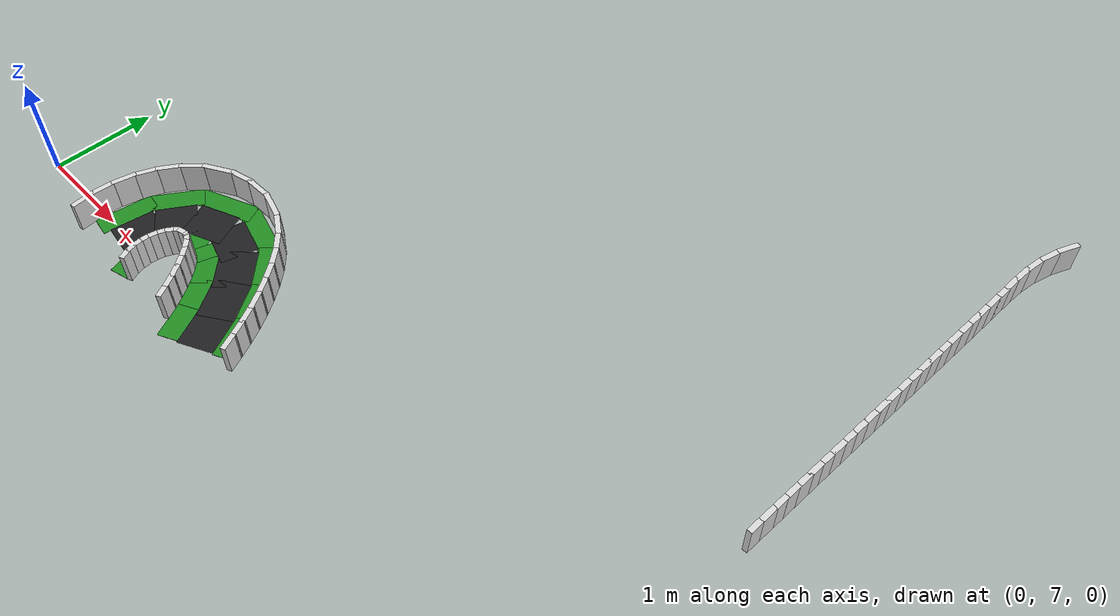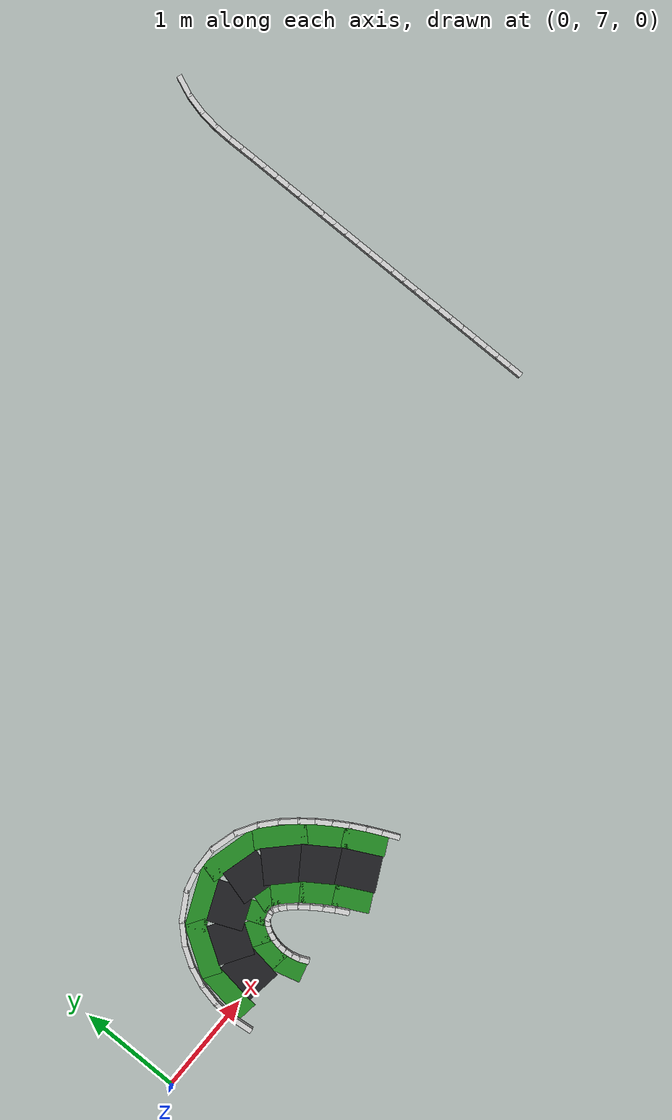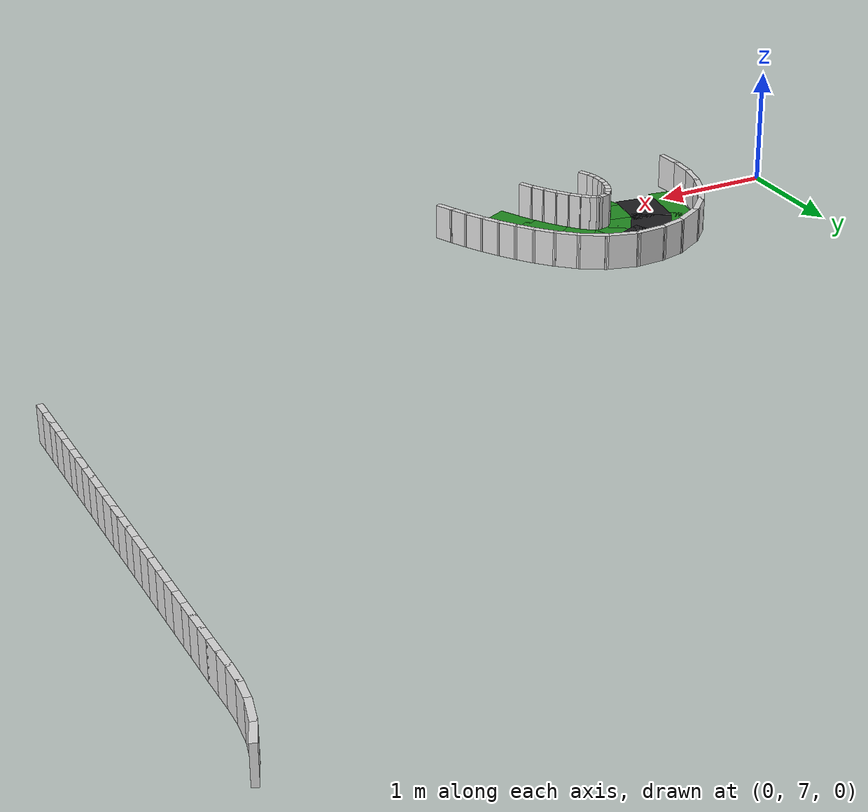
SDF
<sdf version="1.8">
 <world name="it_arena_track">
  <model name="it_arena_track_static">
   <static>true</static>
   <link name="surface_main_73">
    <pose>2.6581 6.9136 0.0015 0 0 2.03842</pose>
    <collision name="surface_main_73_col">
     <geometry><box><size>0.3908 0.3500 0.0030</size></box></geometry>
    </collision>
    <visual name="surface_main_73_vis">
     <geometry><box><size>0.3908 0.3500 0.0030</size></box></geometry>
     <material><ambient>0.12 0.12 0.13 1</ambient><diffuse>0.12 0.12 0.13 1</diffuse></material>
    </visual>
   </link>
   <link name="surface_main_74">
    <pose>2.4810 7.2144 0.0015 0 0 2.16415</pose>
    <collision name="surface_main_74_col">
     <geometry><box><size>0.4137 0.3500 0.0030</size></box></geometry>
    </collision>
    <visual name="surface_main_74_vis">
     <geometry><box><size>0.4137 0.3500 0.0030</size></box></geometry>
     <material><ambient>0.12 0.12 0.13 1</ambient><diffuse>0.12 0.12 0.13 1</diffuse></material>
    </visual>
   </link>
   <link name="surface_main_75">
    <pose>2.2529 7.4895 0.0015 0 0 2.36232</pose>
    <collision name="surface_main_75_col">
     <geometry><box><size>0.4123 0.3500 0.0030</size></box></geometry>
    </collision>
    <visual name="surface_main_75_vis">
     <geometry><box><size>0.4123 0.3500 0.0030</size></box></geometry>
     <material><ambient>0.12 0.12 0.13 1</ambient><diffuse>0.12 0.12 0.13 1</diffuse></material>
    </visual>
   </link>
   <link name="surface_main_76">
    <pose>1.9651 7.6596 0.0015 0 0 2.87294</pose>
    <collision name="surface_main_76_col">
     <geometry><box><size>0.3823 0.3500 0.0030</size></box></geometry>
    </collision>
    <visual name="surface_main_76_vis">
     <geometry><box><size>0.3823 0.3500 0.0030</size></box></geometry>
     <material><ambient>0.12 0.12 0.13 1</ambient><diffuse>0.12 0.12 0.13 1</diffuse></material>
    </visual>
   </link>
   <link name="surface_main_77">
    <pose>1.6422 7.6354 0.0015 0 0 -2.74364</pose>
    <collision name="surface_main_77_col">
     <geometry><box><size>0.4056 0.3500 0.0030</size></box></geometry>
    </collision>
    <visual name="surface_main_77_vis">
     <geometry><box><size>0.4056 0.3500 0.0030</size></box></geometry>
     <material><ambient>0.12 0.12 0.13 1</ambient><diffuse>0.12 0.12 0.13 1</diffuse></material>
    </visual>
   </link>
   <link name="surface_main_78">
    <pose>1.3888 7.4252 0.0015 0 0 -2.14076</pose>
    <collision name="surface_main_78_col">
     <geometry><box><size>0.3875 0.3500 0.0030</size></box></geometry>
    </collision>
    <visual name="surface_main_78_vis">
     <geometry><box><size>0.3875 0.3500 0.0030</size></box></geometry>
     <material><ambient>0.12 0.12 0.13 1</ambient><diffuse>0.12 0.12 0.13 1</diffuse></material>
    </visual>
   </link>
   <link name="surface_main_79">
    <pose>1.2733 7.1063 0.0015 0 0 -1.70835</pose>
    <collision name="surface_main_79_col">
     <geometry><box><size>0.4110 0.3500 0.0030</size></box></geometry>
    </collision>
    <visual name="surface_main_79_vis">
     <geometry><box><size>0.4110 0.3500 0.0030</size></box></geometry>
     <material><ambient>0.12 0.12 0.13 1</ambient><diffuse>0.12 0.12 0.13 1</diffuse></material>
    </visual>
   </link>
   <link name="grass_main_left_73">
    <pose>2.4139 6.7879 0.0010 0 0 2.03775</pose>
    <collision name="grass_main_left_73_col">
     <geometry><box><size>0.3600 0.2000 0.0020</size></box></geometry>
    </collision>
    <visual name="grass_main_left_73_vis">
     <geometry><box><size>0.3600 0.2000 0.0020</size></box></geometry>
     <material><ambient>0.13 0.55 0.13 1</ambient><diffuse>0.13 0.55 0.13 1</diffuse></material>
    </visual>
   </link>
   <link name="grass_main_left_74">
    <pose>2.2538 7.0607 0.0010 0 0 2.16400</pose>
    <collision name="grass_main_left_74_col">
     <geometry><box><size>0.3691 0.2000 0.0020</size></box></geometry>
    </collision>
    <visual name="grass_main_left_74_vis">
     <geometry><box><size>0.3691 0.2000 0.0020</size></box></geometry>
     <material><ambient>0.13 0.55 0.13 1</ambient><diffuse>0.13 0.55 0.13 1</diffuse></material>
    </visual>
   </link>
   <link name="grass_main_left_75">
    <pose>2.0676 7.2908 0.0010 0 0 2.35339</pose>
    <collision name="grass_main_left_75_col">
     <geometry><box><size>0.3147 0.2000 0.0020</size></box></geometry>
    </collision>
    <visual name="grass_main_left_75_vis">
     <geometry><box><size>0.3147 0.2000 0.0020</size></box></geometry>
     <material><ambient>0.13 0.55 0.13 1</ambient><diffuse>0.13 0.55 0.13 1</diffuse></material>
    </visual>
   </link>
   <link name="grass_main_left_76">
    <pose>1.9012 7.4089 0.0010 0 0 2.84828</pose>
    <collision name="grass_main_left_76_col">
     <geometry><box><size>0.1679 0.2000 0.0020</size></box></geometry>
    </collision>
    <visual name="grass_main_left_76_vis">
     <geometry><box><size>0.1679 0.2000 0.0020</size></box></geometry>
     <material><ambient>0.13 0.55 0.13 1</ambient><diffuse>0.13 0.55 0.13 1</diffuse></material>
    </visual>
   </link>
   <link name="grass_main_left_77">
    <pose>1.7507 7.3993 0.0010 0 0 -2.77752</pose>
    <collision name="grass_main_left_77_col">
     <geometry><box><size>0.1986 0.2000 0.0020</size></box></geometry>
    </collision>
    <visual name="grass_main_left_77_vis">
     <geometry><box><size>0.1986 0.2000 0.0020</size></box></geometry>
     <material><ambient>0.13 0.55 0.13 1</ambient><diffuse>0.13 0.55 0.13 1</diffuse></material>
    </visual>
   </link>
   <link name="grass_main_left_78">
    <pose>1.6131 7.2788 0.0010 0 0 -2.13592</pose>
    <collision name="grass_main_left_78_col">
     <geometry><box><size>0.2444 0.2000 0.0020</size></box></geometry>
    </collision>
    <visual name="grass_main_left_78_vis">
     <geometry><box><size>0.2444 0.2000 0.0020</size></box></geometry>
     <material><ambient>0.13 0.55 0.13 1</ambient><diffuse>0.13 0.55 0.13 1</diffuse></material>
    </visual>
   </link>
   <link name="grass_main_left_79">
    <pose>1.5397 7.0690 0.0010 0 0 -1.70750</pose>
    <collision name="grass_main_left_79_col">
     <geometry><box><size>0.2788 0.2000 0.0020</size></box></geometry>
    </collision>
    <visual name="grass_main_left_79_vis">
     <geometry><box><size>0.2788 0.2000 0.0020</size></box></geometry>
     <material><ambient>0.13 0.55 0.13 1</ambient><diffuse>0.13 0.55 0.13 1</diffuse></material>
    </visual>
   </link>
   <link name="grass_main_left_80">
    <pose>1.5537 6.8344 0.0010 0 0 -1.31031</pose>
    <collision name="grass_main_left_80_col">
     <geometry><box><size>0.2725 0.2000 0.0020</size></box></geometry>
    </collision>
    <visual name="grass_main_left_80_vis">
     <geometry><box><size>0.2725 0.2000 0.0020</size></box></geometry>
     <material><ambient>0.13 0.55 0.13 1</ambient><diffuse>0.13 0.55 0.13 1</diffuse></material>
    </visual>
   </link>
   <link name="grass_main_right_67">
    <pose>2.9023 7.0394 0.0010 0 0 2.03899</pose>
    <collision name="grass_main_right_67_col">
     <geometry><box><size>0.4216 0.2000 0.0020</size></box></geometry>
    </collision>
    <visual name="grass_main_right_67_vis">
     <geometry><box><size>0.4216 0.2000 0.0020</size></box></geometry>
     <material><ambient>0.13 0.55 0.13 1</ambient><diffuse>0.13 0.55 0.13 1</diffuse></material>
    </visual>
   </link>
   <link name="grass_main_right_68">
    <pose>2.7082 7.3681 0.0010 0 0 2.16428</pose>
    <collision name="grass_main_right_68_col">
     <geometry><box><size>0.4582 0.2000 0.0020</size></box></geometry>
    </collision>
    <visual name="grass_main_right_68_vis">
     <geometry><box><size>0.4582 0.2000 0.0020</size></box></geometry>
     <material><ambient>0.13 0.55 0.13 1</ambient><diffuse>0.13 0.55 0.13 1</diffuse></material>
    </visual>
   </link>
   <link name="grass_main_right_69">
    <pose>2.4382 7.6882 0.0010 0 0 2.36783</pose>
    <collision name="grass_main_right_69_col">
     <geometry><box><size>0.5100 0.2000 0.0020</size></box></geometry>
    </collision>
    <visual name="grass_main_right_69_vis">
     <geometry><box><size>0.5100 0.2000 0.0020</size></box></geometry>
     <material><ambient>0.13 0.55 0.13 1</ambient><diffuse>0.13 0.55 0.13 1</diffuse></material>
    </visual>
   </link>
   <link name="grass_main_right_70">
    <pose>2.0289 7.9103 0.0010 0 0 2.87988</pose>
    <collision name="grass_main_right_70_col">
     <geometry><box><size>0.5968 0.2000 0.0020</size></box></geometry>
    </collision>
    <visual name="grass_main_right_70_vis">
     <geometry><box><size>0.5968 0.2000 0.0020</size></box></geometry>
     <material><ambient>0.13 0.55 0.13 1</ambient><diffuse>0.13 0.55 0.13 1</diffuse></material>
    </visual>
   </link>
   <link name="grass_main_right_71">
    <pose>1.5338 7.8715 0.0010 0 0 -2.73266</pose>
    <collision name="grass_main_right_71_col">
     <geometry><box><size>0.6127 0.2000 0.0020</size></box></geometry>
    </collision>
    <visual name="grass_main_right_71_vis">
     <geometry><box><size>0.6127 0.2000 0.0020</size></box></geometry>
     <material><ambient>0.13 0.55 0.13 1</ambient><diffuse>0.13 0.55 0.13 1</diffuse></material>
    </visual>
   </link>
   <link name="grass_main_right_72">
    <pose>1.1644 7.5716 0.0010 0 0 -2.14299</pose>
    <collision name="grass_main_right_72_col">
     <geometry><box><size>0.5307 0.2000 0.0020</size></box></geometry>
    </collision>
    <visual name="grass_main_right_72_vis">
     <geometry><box><size>0.5307 0.2000 0.0020</size></box></geometry>
     <material><ambient>0.13 0.55 0.13 1</ambient><diffuse>0.13 0.55 0.13 1</diffuse></material>
    </visual>
   </link>
   <link name="grass_main_right_73">
    <pose>1.0070 7.1437 0.0010 0 0 -1.70879</pose>
    <collision name="grass_main_right_73_col">
     <geometry><box><size>0.5431 0.2000 0.0020</size></box></geometry>
    </collision>
    <visual name="grass_main_right_73_vis">
     <geometry><box><size>0.5431 0.2000 0.0020</size></box></geometry>
     <material><ambient>0.13 0.55 0.13 1</ambient><diffuse>0.13 0.55 0.13 1</diffuse></material>
    </visual>
   </link>
   <link name="walls_main_left_184">
    <pose>2.2717 6.7977 0.1500 0 0 2.06099</pose>
    <collision name="walls_main_left_184_col">
     <geometry><box><size>0.1367 0.0500 0.3000</size></box></geometry>
     <surface><friction><ode><mu>0.8</mu><mu2>0.8</mu2></ode></friction></surface>
    </collision>
    <visual name="walls_main_left_184_vis">
     <geometry><box><size>0.1367 0.0500 0.3000</size></box></geometry>
     <material><ambient>0.85 0.85 0.85 1</ambient><diffuse>0.85 0.85 0.85 1</diffuse></material>
    </visual>
   </link>
   <link name="walls_main_left_185">
    <pose>2.2133 6.9002 0.1500 0 0 2.11734</pose>
    <collision name="walls_main_left_185_col">
     <geometry><box><size>0.1348 0.0500 0.3000</size></box></geometry>
     <surface><friction><ode><mu>0.8</mu><mu2>0.8</mu2></ode></friction></surface>
    </collision>
    <visual name="walls_main_left_185_vis">
     <geometry><box><size>0.1348 0.0500 0.3000</size></box></geometry>
     <material><ambient>0.85 0.85 0.85 1</ambient><diffuse>0.85 0.85 0.85 1</diffuse></material>
    </visual>
   </link>
   <link name="walls_main_left_186">
    <pose>2.1489 7.0003 0.1500 0 0 2.16656</pose>
    <collision name="walls_main_left_186_col">
     <geometry><box><size>0.1391 0.0500 0.3000</size></box></geometry>
     <surface><friction><ode><mu>0.8</mu><mu2>0.8</mu2></ode></friction></surface>
    </collision>
    <visual name="walls_main_left_186_vis">
     <geometry><box><size>0.1391 0.0500 0.3000</size></box></geometry>
     <material><ambient>0.85 0.85 0.85 1</ambient><diffuse>0.85 0.85 0.85 1</diffuse></material>
    </visual>
   </link>
   <link name="walls_main_left_187">
    <pose>2.0801 7.0962 0.1500 0 0 2.22118</pose>
    <collision name="walls_main_left_187_col">
     <geometry><box><size>0.1324 0.0500 0.3000</size></box></geometry>
     <surface><friction><ode><mu>0.8</mu><mu2>0.8</mu2></ode></friction></surface>
    </collision>
    <visual name="walls_main_left_187_vis">
     <geometry><box><size>0.1324 0.0500 0.3000</size></box></geometry>
     <material><ambient>0.85 0.85 0.85 1</ambient><diffuse>0.85 0.85 0.85 1</diffuse></material>
    </visual>
   </link>
   <link name="walls_main_left_188">
    <pose>2.0113 7.1802 0.1500 0 0 2.29770</pose>
    <collision name="walls_main_left_188_col">
     <geometry><box><size>0.1173 0.0500 0.3000</size></box></geometry>
     <surface><friction><ode><mu>0.8</mu><mu2>0.8</mu2></ode></friction></surface>
    </collision>
    <visual name="walls_main_left_188_vis">
     <geometry><box><size>0.1173 0.0500 0.3000</size></box></geometry>
     <material><ambient>0.85 0.85 0.85 1</ambient><diffuse>0.85 0.85 0.85 1</diffuse></material>
    </visual>
   </link>
   <link name="walls_main_left_189">
    <pose>1.9474 7.2453 0.1500 0 0 2.41002</pose>
    <collision name="walls_main_left_189_col">
     <geometry><box><size>0.0929 0.0500 0.3000</size></box></geometry>
     <surface><friction><ode><mu>0.8</mu><mu2>0.8</mu2></ode></friction></surface>
    </collision>
    <visual name="walls_main_left_189_vis">
     <geometry><box><size>0.0929 0.0500 0.3000</size></box></geometry>
     <material><ambient>0.85 0.85 0.85 1</ambient><diffuse>0.85 0.85 0.85 1</diffuse></material>
    </visual>
   </link>
   <link name="walls_main_left_190">
    <pose>1.8954 7.2865 0.1500 0 0 2.56725</pose>
    <collision name="walls_main_left_190_col">
     <geometry><box><size>0.0600 0.0500 0.3000</size></box></geometry>
     <surface><friction><ode><mu>0.8</mu><mu2>0.8</mu2></ode></friction></surface>
    </collision>
    <visual name="walls_main_left_190_vis">
     <geometry><box><size>0.0600 0.0500 0.3000</size></box></geometry>
     <material><ambient>0.85 0.85 0.85 1</ambient><diffuse>0.85 0.85 0.85 1</diffuse></material>
    </visual>
   </link>
   <link name="walls_main_left_191">
    <pose>1.8661 7.3034 0.1500 0 0 2.78462</pose>
    <collision name="walls_main_left_191_col">
     <geometry><box><size>0.0180 0.0500 0.3000</size></box></geometry>
     <surface><friction><ode><mu>0.8</mu><mu2>0.8</mu2></ode></friction></surface>
    </collision>
    <visual name="walls_main_left_191_vis">
     <geometry><box><size>0.0180 0.0500 0.3000</size></box></geometry>
     <material><ambient>0.85 0.85 0.85 1</ambient><diffuse>0.85 0.85 0.85 1</diffuse></material>
    </visual>
   </link>
   <link name="walls_main_left_192">
    <pose>1.8442 7.3046 0.1500 0 0 -3.04125</pose>
    <collision name="walls_main_left_192_col">
     <geometry><box><size>0.0339 0.0500 0.3000</size></box></geometry>
     <surface><friction><ode><mu>0.8</mu><mu2>0.8</mu2></ode></friction></surface>
    </collision>
    <visual name="walls_main_left_192_vis">
     <geometry><box><size>0.0339 0.0500 0.3000</size></box></geometry>
     <material><ambient>0.85 0.85 0.85 1</ambient><diffuse>0.85 0.85 0.85 1</diffuse></material>
    </visual>
   </link>
   <link name="walls_main_left_193">
    <pose>1.7961 7.2950 0.1500 0 0 -2.90179</pose>
    <collision name="walls_main_left_193_col">
     <geometry><box><size>0.0792 0.0500 0.3000</size></box></geometry>
     <surface><friction><ode><mu>0.8</mu><mu2>0.8</mu2></ode></friction></surface>
    </collision>
    <visual name="walls_main_left_193_vis">
     <geometry><box><size>0.0792 0.0500 0.3000</size></box></geometry>
     <material><ambient>0.85 0.85 0.85 1</ambient><diffuse>0.85 0.85 0.85 1</diffuse></material>
    </visual>
   </link>
   <link name="walls_main_left_194">
    <pose>1.7648 7.2870 0.1500 0 0 0.10204</pose>
    <collision name="walls_main_left_194_col">
     <geometry><box><size>0.0052 0.0500 0.3000</size></box></geometry>
     <surface><friction><ode><mu>0.8</mu><mu2>0.8</mu2></ode></friction></surface>
    </collision>
    <visual name="walls_main_left_194_vis">
     <geometry><box><size>0.0052 0.0500 0.3000</size></box></geometry>
     <material><ambient>0.85 0.85 0.85 1</ambient><diffuse>0.85 0.85 0.85 1</diffuse></material>
    </visual>
   </link>
   <link name="walls_main_left_195">
    <pose>1.7480 7.2676 0.1500 0 0 -2.34065</pose>
    <collision name="walls_main_left_195_col">
     <geometry><box><size>0.0630 0.0500 0.3000</size></box></geometry>
     <surface><friction><ode><mu>0.8</mu><mu2>0.8</mu2></ode></friction></surface>
    </collision>
    <visual name="walls_main_left_195_vis">
     <geometry><box><size>0.0630 0.0500 0.3000</size></box></geometry>
     <material><ambient>0.85 0.85 0.85 1</ambient><diffuse>0.85 0.85 0.85 1</diffuse></material>
    </visual>
   </link>
   <link name="walls_main_left_196">
    <pose>1.7114 7.2203 0.1500 0 0 -2.13696</pose>
    <collision name="walls_main_left_196_col">
     <geometry><box><size>0.0753 0.0500 0.3000</size></box></geometry>
     <surface><friction><ode><mu>0.8</mu><mu2>0.8</mu2></ode></friction></surface>
    </collision>
    <visual name="walls_main_left_196_vis">
     <geometry><box><size>0.0753 0.0500 0.3000</size></box></geometry>
     <material><ambient>0.85 0.85 0.85 1</ambient><diffuse>0.85 0.85 0.85 1</diffuse></material>
    </visual>
   </link>
   <link name="walls_main_left_197">
    <pose>1.6803 7.1589 0.1500 0 0 -1.95216</pose>
    <collision name="walls_main_left_197_col">
     <geometry><box><size>0.0836 0.0500 0.3000</size></box></geometry>
     <surface><friction><ode><mu>0.8</mu><mu2>0.8</mu2></ode></friction></surface>
    </collision>
    <visual name="walls_main_left_197_vis">
     <geometry><box><size>0.0836 0.0500 0.3000</size></box></geometry>
     <material><ambient>0.85 0.85 0.85 1</ambient><diffuse>0.85 0.85 0.85 1</diffuse></material>
    </visual>
   </link>
   <link name="walls_main_left_198">
    <pose>1.6589 7.0886 0.1500 0 0 -1.78414</pose>
    <collision name="walls_main_left_198_col">
     <geometry><box><size>0.0860 0.0500 0.3000</size></box></geometry>
     <surface><friction><ode><mu>0.8</mu><mu2>0.8</mu2></ode></friction></surface>
    </collision>
    <visual name="walls_main_left_198_vis">
     <geometry><box><size>0.0860 0.0500 0.3000</size></box></geometry>
     <material><ambient>0.85 0.85 0.85 1</ambient><diffuse>0.85 0.85 0.85 1</diffuse></material>
    </visual>
   </link>
   <link name="walls_main_left_199">
    <pose>1.6490 7.0162 0.1500 0 0 -1.62569</pose>
    <collision name="walls_main_left_199_col">
     <geometry><box><size>0.0827 0.0500 0.3000</size></box></geometry>
     <surface><friction><ode><mu>0.8</mu><mu2>0.8</mu2></ode></friction></surface>
    </collision>
    <visual name="walls_main_left_199_vis">
     <geometry><box><size>0.0827 0.0500 0.3000</size></box></geometry>
     <material><ambient>0.85 0.85 0.85 1</ambient><diffuse>0.85 0.85 0.85 1</diffuse></material>
    </visual>
   </link>
   <link name="walls_main_left_200">
    <pose>1.6508 6.9414 0.1500 0 0 -1.47225</pose>
    <collision name="walls_main_left_200_col">
     <geometry><box><size>0.0899 0.0500 0.3000</size></box></geometry>
     <surface><friction><ode><mu>0.8</mu><mu2>0.8</mu2></ode></friction></surface>
    </collision>
    <visual name="walls_main_left_200_vis">
     <geometry><box><size>0.0899 0.0500 0.3000</size></box></geometry>
     <material><ambient>0.85 0.85 0.85 1</ambient><diffuse>0.85 0.85 0.85 1</diffuse></material>
    </visual>
   </link>
   <link name="walls_main_left_201">
    <pose>1.6643 6.8653 0.1500 0 0 -1.31839</pose>
    <collision name="walls_main_left_201_col">
     <geometry><box><size>0.0884 0.0500 0.3000</size></box></geometry>
     <surface><friction><ode><mu>0.8</mu><mu2>0.8</mu2></ode></friction></surface>
    </collision>
    <visual name="walls_main_left_201_vis">
     <geometry><box><size>0.0884 0.0500 0.3000</size></box></geometry>
     <material><ambient>0.85 0.85 0.85 1</ambient><diffuse>0.85 0.85 0.85 1</diffuse></material>
    </visual>
   </link>
   <link name="walls_main_left_202">
    <pose>1.6923 6.7869 0.1500 0 0 -1.14992</pose>
    <collision name="walls_main_left_202_col">
     <geometry><box><size>0.1037 0.0500 0.3000</size></box></geometry>
     <surface><friction><ode><mu>0.8</mu><mu2>0.8</mu2></ode></friction></surface>
    </collision>
    <visual name="walls_main_left_202_vis">
     <geometry><box><size>0.1037 0.0500 0.3000</size></box></geometry>
     <material><ambient>0.85 0.85 0.85 1</ambient><diffuse>0.85 0.85 0.85 1</diffuse></material>
    </visual>
   </link>
   <link name="walls_main_right_64">
    <pose>7.2956 12.8287 0.1500 0 0 -1.96199</pose>
    <collision name="walls_main_right_64_col">
     <geometry><box><size>0.2227 0.0500 0.3000</size></box></geometry>
     <surface><friction><ode><mu>0.8</mu><mu2>0.8</mu2></ode></friction></surface>
    </collision>
    <visual name="walls_main_right_64_vis">
     <geometry><box><size>0.2227 0.0500 0.3000</size></box></geometry>
     <material><ambient>0.85 0.85 0.85 1</ambient><diffuse>0.85 0.85 0.85 1</diffuse></material>
    </visual>
   </link>
   <link name="walls_main_right_65">
    <pose>7.2347 12.6438 0.1500 0 0 -1.81785</pose>
    <collision name="walls_main_right_65_col">
     <geometry><box><size>0.2262 0.0500 0.3000</size></box></geometry>
     <surface><friction><ode><mu>0.8</mu><mu2>0.8</mu2></ode></friction></surface>
    </collision>
    <visual name="walls_main_right_65_vis">
     <geometry><box><size>0.2262 0.0500 0.3000</size></box></geometry>
     <material><ambient>0.85 0.85 0.85 1</ambient><diffuse>0.85 0.85 0.85 1</diffuse></material>
    </visual>
   </link>
   <link name="walls_main_right_66">
    <pose>7.1998 12.4567 0.1500 0 0 -1.68769</pose>
    <collision name="walls_main_right_66_col">
     <geometry><box><size>0.2126 0.0500 0.3000</size></box></geometry>
     <surface><friction><ode><mu>0.8</mu><mu2>0.8</mu2></ode></friction></surface>
    </collision>
    <visual name="walls_main_right_66_vis">
     <geometry><box><size>0.2126 0.0500 0.3000</size></box></geometry>
     <material><ambient>0.85 0.85 0.85 1</ambient><diffuse>0.85 0.85 0.85 1</diffuse></material>
    </visual>
   </link>
   <link name="walls_main_right_67">
    <pose>7.1867 12.2814 0.1500 0 0 -1.59841</pose>
    <collision name="walls_main_right_67_col">
     <geometry><box><size>0.1921 0.0500 0.3000</size></box></geometry>
     <surface><friction><ode><mu>0.8</mu><mu2>0.8</mu2></ode></friction></surface>
    </collision>
    <visual name="walls_main_right_67_vis">
     <geometry><box><size>0.1921 0.0500 0.3000</size></box></geometry>
     <material><ambient>0.85 0.85 0.85 1</ambient><diffuse>0.85 0.85 0.85 1</diffuse></material>
    </visual>
   </link>
   <link name="walls_main_right_68">
    <pose>7.1853 12.1246 0.1500 0 0 -1.55859</pose>
    <collision name="walls_main_right_68_col">
     <geometry><box><size>0.1685 0.0500 0.3000</size></box></geometry>
     <surface><friction><ode><mu>0.8</mu><mu2>0.8</mu2></ode></friction></surface>
    </collision>
    <visual name="walls_main_right_68_vis">
     <geometry><box><size>0.1685 0.0500 0.3000</size></box></geometry>
     <material><ambient>0.85 0.85 0.85 1</ambient><diffuse>0.85 0.85 0.85 1</diffuse></material>
    </visual>
   </link>
   <link name="walls_main_right_69">
    <pose>7.1872 11.9834 0.1500 0 0 -1.55701</pose>
    <collision name="walls_main_right_69_col">
     <geometry><box><size>0.1564 0.0500 0.3000</size></box></geometry>
     <surface><friction><ode><mu>0.8</mu><mu2>0.8</mu2></ode></friction></surface>
    </collision>
    <visual name="walls_main_right_69_vis">
     <geometry><box><size>0.1564 0.0500 0.3000</size></box></geometry>
     <material><ambient>0.85 0.85 0.85 1</ambient><diffuse>0.85 0.85 0.85 1</diffuse></material>
    </visual>
   </link>
   <link name="walls_main_right_70">
    <pose>7.1884 11.8462 0.1500 0 0 -1.56605</pose>
    <collision name="walls_main_right_70_col">
     <geometry><box><size>0.1591 0.0500 0.3000</size></box></geometry>
     <surface><friction><ode><mu>0.8</mu><mu2>0.8</mu2></ode></friction></surface>
    </collision>
    <visual name="walls_main_right_70_vis">
     <geometry><box><size>0.1591 0.0500 0.3000</size></box></geometry>
     <material><ambient>0.85 0.85 0.85 1</ambient><diffuse>0.85 0.85 0.85 1</diffuse></material>
    </visual>
   </link>
   <link name="walls_main_right_71">
    <pose>7.1890 11.7070 0.1500 0 0 -1.56680</pose>
    <collision name="walls_main_right_71_col">
     <geometry><box><size>0.1610 0.0500 0.3000</size></box></geometry>
     <surface><friction><ode><mu>0.8</mu><mu2>0.8</mu2></ode></friction></surface>
    </collision>
    <visual name="walls_main_right_71_vis">
     <geometry><box><size>0.1610 0.0500 0.3000</size></box></geometry>
     <material><ambient>0.85 0.85 0.85 1</ambient><diffuse>0.85 0.85 0.85 1</diffuse></material>
    </visual>
   </link>
   <link name="walls_main_right_72">
    <pose>7.1896 11.5670 0.1500 0 0 -1.56608</pose>
    <collision name="walls_main_right_72_col">
     <geometry><box><size>0.1610 0.0500 0.3000</size></box></geometry>
     <surface><friction><ode><mu>0.8</mu><mu2>0.8</mu2></ode></friction></surface>
    </collision>
    <visual name="walls_main_right_72_vis">
     <geometry><box><size>0.1610 0.0500 0.3000</size></box></geometry>
     <material><ambient>0.85 0.85 0.85 1</ambient><diffuse>0.85 0.85 0.85 1</diffuse></material>
    </visual>
   </link>
   <link name="walls_main_right_73">
    <pose>7.1903 11.4271 0.1500 0 0 -1.56680</pose>
    <collision name="walls_main_right_73_col">
     <geometry><box><size>0.1610 0.0500 0.3000</size></box></geometry>
     <surface><friction><ode><mu>0.8</mu><mu2>0.8</mu2></ode></friction></surface>
    </collision>
    <visual name="walls_main_right_73_vis">
     <geometry><box><size>0.1610 0.0500 0.3000</size></box></geometry>
     <material><ambient>0.85 0.85 0.85 1</ambient><diffuse>0.85 0.85 0.85 1</diffuse></material>
    </visual>
   </link>
   <link name="walls_main_right_74">
    <pose>7.1909 11.2871 0.1500 0 0 -1.56608</pose>
    <collision name="walls_main_right_74_col">
     <geometry><box><size>0.1610 0.0500 0.3000</size></box></geometry>
     <surface><friction><ode><mu>0.8</mu><mu2>0.8</mu2></ode></friction></surface>
    </collision>
    <visual name="walls_main_right_74_vis">
     <geometry><box><size>0.1610 0.0500 0.3000</size></box></geometry>
     <material><ambient>0.85 0.85 0.85 1</ambient><diffuse>0.85 0.85 0.85 1</diffuse></material>
    </visual>
   </link>
   <link name="walls_main_right_75">
    <pose>7.1915 11.1471 0.1500 0 0 -1.56680</pose>
    <collision name="walls_main_right_75_col">
     <geometry><box><size>0.1610 0.0500 0.3000</size></box></geometry>
     <surface><friction><ode><mu>0.8</mu><mu2>0.8</mu2></ode></friction></surface>
    </collision>
    <visual name="walls_main_right_75_vis">
     <geometry><box><size>0.1610 0.0500 0.3000</size></box></geometry>
     <material><ambient>0.85 0.85 0.85 1</ambient><diffuse>0.85 0.85 0.85 1</diffuse></material>
    </visual>
   </link>
   <link name="walls_main_right_76">
    <pose>7.1921 11.0071 0.1500 0 0 -1.56608</pose>
    <collision name="walls_main_right_76_col">
     <geometry><box><size>0.1610 0.0500 0.3000</size></box></geometry>
     <surface><friction><ode><mu>0.8</mu><mu2>0.8</mu2></ode></friction></surface>
    </collision>
    <visual name="walls_main_right_76_vis">
     <geometry><box><size>0.1610 0.0500 0.3000</size></box></geometry>
     <material><ambient>0.85 0.85 0.85 1</ambient><diffuse>0.85 0.85 0.85 1</diffuse></material>
    </visual>
   </link>
   <link name="walls_main_right_77">
    <pose>7.1927 10.8671 0.1500 0 0 -1.56680</pose>
    <collision name="walls_main_right_77_col">
     <geometry><box><size>0.1610 0.0500 0.3000</size></box></geometry>
     <surface><friction><ode><mu>0.8</mu><mu2>0.8</mu2></ode></friction></surface>
    </collision>
    <visual name="walls_main_right_77_vis">
     <geometry><box><size>0.1610 0.0500 0.3000</size></box></geometry>
     <material><ambient>0.85 0.85 0.85 1</ambient><diffuse>0.85 0.85 0.85 1</diffuse></material>
    </visual>
   </link>
   <link name="walls_main_right_78">
    <pose>7.1933 10.7270 0.1500 0 0 -1.56608</pose>
    <collision name="walls_main_right_78_col">
     <geometry><box><size>0.1612 0.0500 0.3000</size></box></geometry>
     <surface><friction><ode><mu>0.8</mu><mu2>0.8</mu2></ode></friction></surface>
    </collision>
    <visual name="walls_main_right_78_vis">
     <geometry><box><size>0.1612 0.0500 0.3000</size></box></geometry>
     <material><ambient>0.85 0.85 0.85 1</ambient><diffuse>0.85 0.85 0.85 1</diffuse></material>
    </visual>
   </link>
   <link name="walls_main_right_79">
    <pose>7.1939 10.5871 0.1500 0 0 -1.56680</pose>
    <collision name="walls_main_right_79_col">
     <geometry><box><size>0.1607 0.0500 0.3000</size></box></geometry>
     <surface><friction><ode><mu>0.8</mu><mu2>0.8</mu2></ode></friction></surface>
    </collision>
    <visual name="walls_main_right_79_vis">
     <geometry><box><size>0.1607 0.0500 0.3000</size></box></geometry>
     <material><ambient>0.85 0.85 0.85 1</ambient><diffuse>0.85 0.85 0.85 1</diffuse></material>
    </visual>
   </link>
   <link name="walls_main_right_80">
    <pose>7.1945 10.4469 0.1500 0 0 -1.56624</pose>
    <collision name="walls_main_right_80_col">
     <geometry><box><size>0.1617 0.0500 0.3000</size></box></geometry>
     <surface><friction><ode><mu>0.8</mu><mu2>0.8</mu2></ode></friction></surface>
    </collision>
    <visual name="walls_main_right_80_vis">
     <geometry><box><size>0.1617 0.0500 0.3000</size></box></geometry>
     <material><ambient>0.85 0.85 0.85 1</ambient><diffuse>0.85 0.85 0.85 1</diffuse></material>
    </visual>
   </link>
   <link name="walls_main_right_81">
    <pose>7.1951 10.3069 0.1500 0 0 -1.56664</pose>
    <collision name="walls_main_right_81_col">
     <geometry><box><size>0.1603 0.0500 0.3000</size></box></geometry>
     <surface><friction><ode><mu>0.8</mu><mu2>0.8</mu2></ode></friction></surface>
    </collision>
    <visual name="walls_main_right_81_vis">
     <geometry><box><size>0.1603 0.0500 0.3000</size></box></geometry>
     <material><ambient>0.85 0.85 0.85 1</ambient><diffuse>0.85 0.85 0.85 1</diffuse></material>
    </visual>
   </link>
   <link name="walls_main_right_82">
    <pose>7.1957 10.1672 0.1500 0 0 -1.56680</pose>
    <collision name="walls_main_right_82_col">
     <geometry><box><size>0.1610 0.0500 0.3000</size></box></geometry>
     <surface><friction><ode><mu>0.8</mu><mu2>0.8</mu2></ode></friction></surface>
    </collision>
    <visual name="walls_main_right_82_vis">
     <geometry><box><size>0.1610 0.0500 0.3000</size></box></geometry>
     <material><ambient>0.85 0.85 0.85 1</ambient><diffuse>0.85 0.85 0.85 1</diffuse></material>
    </visual>
   </link>
   <link name="walls_main_right_83">
    <pose>7.1963 10.0272 0.1500 0 0 -1.56608</pose>
    <collision name="walls_main_right_83_col">
     <geometry><box><size>0.1610 0.0500 0.3000</size></box></geometry>
     <surface><friction><ode><mu>0.8</mu><mu2>0.8</mu2></ode></friction></surface>
    </collision>
    <visual name="walls_main_right_83_vis">
     <geometry><box><size>0.1610 0.0500 0.3000</size></box></geometry>
     <material><ambient>0.85 0.85 0.85 1</ambient><diffuse>0.85 0.85 0.85 1</diffuse></material>
    </visual>
   </link>
   <link name="walls_main_right_84">
    <pose>7.1969 9.8872 0.1500 0 0 -1.56680</pose>
    <collision name="walls_main_right_84_col">
     <geometry><box><size>0.1610 0.0500 0.3000</size></box></geometry>
     <surface><friction><ode><mu>0.8</mu><mu2>0.8</mu2></ode></friction></surface>
    </collision>
    <visual name="walls_main_right_84_vis">
     <geometry><box><size>0.1610 0.0500 0.3000</size></box></geometry>
     <material><ambient>0.85 0.85 0.85 1</ambient><diffuse>0.85 0.85 0.85 1</diffuse></material>
    </visual>
   </link>
   <link name="walls_main_right_85">
    <pose>7.1975 9.7473 0.1500 0 0 -1.56608</pose>
    <collision name="walls_main_right_85_col">
     <geometry><box><size>0.1610 0.0500 0.3000</size></box></geometry>
     <surface><friction><ode><mu>0.8</mu><mu2>0.8</mu2></ode></friction></surface>
    </collision>
    <visual name="walls_main_right_85_vis">
     <geometry><box><size>0.1610 0.0500 0.3000</size></box></geometry>
     <material><ambient>0.85 0.85 0.85 1</ambient><diffuse>0.85 0.85 0.85 1</diffuse></material>
    </visual>
   </link>
   <link name="walls_main_right_86">
    <pose>7.1981 9.6073 0.1500 0 0 -1.56680</pose>
    <collision name="walls_main_right_86_col">
     <geometry><box><size>0.1610 0.0500 0.3000</size></box></geometry>
     <surface><friction><ode><mu>0.8</mu><mu2>0.8</mu2></ode></friction></surface>
    </collision>
    <visual name="walls_main_right_86_vis">
     <geometry><box><size>0.1610 0.0500 0.3000</size></box></geometry>
     <material><ambient>0.85 0.85 0.85 1</ambient><diffuse>0.85 0.85 0.85 1</diffuse></material>
    </visual>
   </link>
   <link name="walls_main_right_87">
    <pose>7.1987 9.4673 0.1500 0 0 -1.56608</pose>
    <collision name="walls_main_right_87_col">
     <geometry><box><size>0.1610 0.0500 0.3000</size></box></geometry>
     <surface><friction><ode><mu>0.8</mu><mu2>0.8</mu2></ode></friction></surface>
    </collision>
    <visual name="walls_main_right_87_vis">
     <geometry><box><size>0.1610 0.0500 0.3000</size></box></geometry>
     <material><ambient>0.85 0.85 0.85 1</ambient><diffuse>0.85 0.85 0.85 1</diffuse></material>
    </visual>
   </link>
   <link name="walls_main_right_88">
    <pose>7.1994 9.3273 0.1500 0 0 -1.56680</pose>
    <collision name="walls_main_right_88_col">
     <geometry><box><size>0.1610 0.0500 0.3000</size></box></geometry>
     <surface><friction><ode><mu>0.8</mu><mu2>0.8</mu2></ode></friction></surface>
    </collision>
    <visual name="walls_main_right_88_vis">
     <geometry><box><size>0.1610 0.0500 0.3000</size></box></geometry>
     <material><ambient>0.85 0.85 0.85 1</ambient><diffuse>0.85 0.85 0.85 1</diffuse></material>
    </visual>
   </link>
   <link name="walls_main_right_89">
    <pose>7.2000 9.1871 0.1500 0 0 -1.56610</pose>
    <collision name="walls_main_right_89_col">
     <geometry><box><size>0.1615 0.0500 0.3000</size></box></geometry>
     <surface><friction><ode><mu>0.8</mu><mu2>0.8</mu2></ode></friction></surface>
    </collision>
    <visual name="walls_main_right_89_vis">
     <geometry><box><size>0.1615 0.0500 0.3000</size></box></geometry>
     <material><ambient>0.85 0.85 0.85 1</ambient><diffuse>0.85 0.85 0.85 1</diffuse></material>
    </visual>
   </link>
   <link name="walls_main_right_90">
    <pose>7.2006 9.0471 0.1500 0 0 -1.56678</pose>
    <collision name="walls_main_right_90_col">
     <geometry><box><size>0.1605 0.0500 0.3000</size></box></geometry>
     <surface><friction><ode><mu>0.8</mu><mu2>0.8</mu2></ode></friction></surface>
    </collision>
    <visual name="walls_main_right_90_vis">
     <geometry><box><size>0.1605 0.0500 0.3000</size></box></geometry>
     <material><ambient>0.85 0.85 0.85 1</ambient><diffuse>0.85 0.85 0.85 1</diffuse></material>
    </visual>
   </link>
   <link name="walls_main_right_91">
    <pose>7.2012 8.9070 0.1500 0 0 -1.56638</pose>
    <collision name="walls_main_right_91_col">
     <geometry><box><size>0.1619 0.0500 0.3000</size></box></geometry>
     <surface><friction><ode><mu>0.8</mu><mu2>0.8</mu2></ode></friction></surface>
    </collision>
    <visual name="walls_main_right_91_vis">
     <geometry><box><size>0.1619 0.0500 0.3000</size></box></geometry>
     <material><ambient>0.85 0.85 0.85 1</ambient><diffuse>0.85 0.85 0.85 1</diffuse></material>
    </visual>
   </link>
   <link name="walls_main_right_92">
    <pose>7.2018 8.7670 0.1500 0 0 -1.56650</pose>
    <collision name="walls_main_right_92_col">
     <geometry><box><size>0.1601 0.0500 0.3000</size></box></geometry>
     <surface><friction><ode><mu>0.8</mu><mu2>0.8</mu2></ode></friction></surface>
    </collision>
    <visual name="walls_main_right_92_vis">
     <geometry><box><size>0.1601 0.0500 0.3000</size></box></geometry>
     <material><ambient>0.85 0.85 0.85 1</ambient><diffuse>0.85 0.85 0.85 1</diffuse></material>
    </visual>
   </link>
   <link name="walls_main_right_167">
    <pose>3.1115 6.8980 0.1500 0 0 1.99173</pose>
    <collision name="walls_main_right_167_col">
     <geometry><box><size>0.1719 0.0500 0.3000</size></box></geometry>
     <surface><friction><ode><mu>0.8</mu><mu2>0.8</mu2></ode></friction></surface>
    </collision>
    <visual name="walls_main_right_167_vis">
     <geometry><box><size>0.1719 0.0500 0.3000</size></box></geometry>
     <material><ambient>0.85 0.85 0.85 1</ambient><diffuse>0.85 0.85 0.85 1</diffuse></material>
    </visual>
   </link>
   <link name="walls_main_right_168">
    <pose>3.0480 7.0349 0.1500 0 0 2.01863</pose>
    <collision name="walls_main_right_168_col">
     <geometry><box><size>0.1754 0.0500 0.3000</size></box></geometry>
     <surface><friction><ode><mu>0.8</mu><mu2>0.8</mu2></ode></friction></surface>
    </collision>
    <visual name="walls_main_right_168_vis">
     <geometry><box><size>0.1754 0.0500 0.3000</size></box></geometry>
     <material><ambient>0.85 0.85 0.85 1</ambient><diffuse>0.85 0.85 0.85 1</diffuse></material>
    </visual>
   </link>
   <link name="walls_main_right_169">
    <pose>2.9770 7.1747 0.1500 0 0 2.06117</pose>
    <collision name="walls_main_right_169_col">
     <geometry><box><size>0.1852 0.0500 0.3000</size></box></geometry>
     <surface><friction><ode><mu>0.8</mu><mu2>0.8</mu2></ode></friction></surface>
    </collision>
    <visual name="walls_main_right_169_vis">
     <geometry><box><size>0.1852 0.0500 0.3000</size></box></geometry>
     <material><ambient>0.85 0.85 0.85 1</ambient><diffuse>0.85 0.85 0.85 1</diffuse></material>
    </visual>
   </link>
   <link name="walls_main_right_170">
    <pose>2.8969 7.3152 0.1500 0 0 2.11708</pose>
    <collision name="walls_main_right_170_col">
     <geometry><box><size>0.1871 0.0500 0.3000</size></box></geometry>
     <surface><friction><ode><mu>0.8</mu><mu2>0.8</mu2></ode></friction></surface>
    </collision>
    <visual name="walls_main_right_170_vis">
     <geometry><box><size>0.1871 0.0500 0.3000</size></box></geometry>
     <material><ambient>0.85 0.85 0.85 1</ambient><diffuse>0.85 0.85 0.85 1</diffuse></material>
    </visual>
   </link>
   <link name="walls_main_right_171">
    <pose>2.8100 7.4505 0.1500 0 0 2.16706</pose>
    <collision name="walls_main_right_171_col">
     <geometry><box><size>0.1828 0.0500 0.3000</size></box></geometry>
     <surface><friction><ode><mu>0.8</mu><mu2>0.8</mu2></ode></friction></surface>
    </collision>
    <visual name="walls_main_right_171_vis">
     <geometry><box><size>0.1828 0.0500 0.3000</size></box></geometry>
     <material><ambient>0.85 0.85 0.85 1</ambient><diffuse>0.85 0.85 0.85 1</diffuse></material>
    </visual>
   </link>
   <link name="walls_main_right_172">
    <pose>2.7154 7.5818 0.1500 0 0 2.22185</pose>
    <collision name="walls_main_right_172_col">
     <geometry><box><size>0.1895 0.0500 0.3000</size></box></geometry>
     <surface><friction><ode><mu>0.8</mu><mu2>0.8</mu2></ode></friction></surface>
    </collision>
    <visual name="walls_main_right_172_vis">
     <geometry><box><size>0.1895 0.0500 0.3000</size></box></geometry>
     <material><ambient>0.85 0.85 0.85 1</ambient><diffuse>0.85 0.85 0.85 1</diffuse></material>
    </visual>
   </link>
   <link name="walls_main_right_173">
    <pose>2.6063 7.7136 0.1500 0 0 2.29943</pose>
    <collision name="walls_main_right_173_col">
     <geometry><box><size>0.2045 0.0500 0.3000</size></box></geometry>
     <surface><friction><ode><mu>0.8</mu><mu2>0.8</mu2></ode></friction></surface>
    </collision>
    <visual name="walls_main_right_173_vis">
     <geometry><box><size>0.2045 0.0500 0.3000</size></box></geometry>
     <material><ambient>0.85 0.85 0.85 1</ambient><diffuse>0.85 0.85 0.85 1</diffuse></material>
    </visual>
   </link>
   <link name="walls_main_right_174">
    <pose>2.4726 7.8458 0.1500 0 0 2.41771</pose>
    <collision name="walls_main_right_174_col">
     <geometry><box><size>0.2287 0.0500 0.3000</size></box></geometry>
     <surface><friction><ode><mu>0.8</mu><mu2>0.8</mu2></ode></friction></surface>
    </collision>
    <visual name="walls_main_right_174_vis">
     <geometry><box><size>0.2287 0.0500 0.3000</size></box></geometry>
     <material><ambient>0.85 0.85 0.85 1</ambient><diffuse>0.85 0.85 0.85 1</diffuse></material>
    </visual>
   </link>
   <link name="walls_main_right_175">
    <pose>2.3009 7.9705 0.1500 0 0 2.59742</pose>
    <collision name="walls_main_right_175_col">
     <geometry><box><size>0.2612 0.0500 0.3000</size></box></geometry>
     <surface><friction><ode><mu>0.8</mu><mu2>0.8</mu2></ode></friction></surface>
    </collision>
    <visual name="walls_main_right_175_vis">
     <geometry><box><size>0.2612 0.0500 0.3000</size></box></geometry>
     <material><ambient>0.85 0.85 0.85 1</ambient><diffuse>0.85 0.85 0.85 1</diffuse></material>
    </visual>
   </link>
   <link name="walls_main_right_176">
    <pose>2.0771 8.0651 0.1500 0 0 2.86622</pose>
    <collision name="walls_main_right_176_col">
     <geometry><box><size>0.3027 0.0500 0.3000</size></box></geometry>
     <surface><friction><ode><mu>0.8</mu><mu2>0.8</mu2></ode></friction></surface>
    </collision>
    <visual name="walls_main_right_176_vis">
     <geometry><box><size>0.3027 0.0500 0.3000</size></box></geometry>
     <material><ambient>0.85 0.85 0.85 1</ambient><diffuse>0.85 0.85 0.85 1</diffuse></material>
    </visual>
   </link>
   <link name="walls_main_right_177">
    <pose>1.8257 8.0968 0.1500 0 0 -3.10924</pose>
    <collision name="walls_main_right_177_col">
     <geometry><box><size>0.2871 0.0500 0.3000</size></box></geometry>
     <surface><friction><ode><mu>0.8</mu><mu2>0.8</mu2></ode></friction></surface>
    </collision>
    <visual name="walls_main_right_177_vis">
     <geometry><box><size>0.2871 0.0500 0.3000</size></box></geometry>
     <material><ambient>0.85 0.85 0.85 1</ambient><diffuse>0.85 0.85 0.85 1</diffuse></material>
    </visual>
   </link>
   <link name="walls_main_right_178">
    <pose>1.5988 8.0670 0.1500 0 0 -2.89484</pose>
    <collision name="walls_main_right_178_col">
     <geometry><box><size>0.2423 0.0500 0.3000</size></box></geometry>
     <surface><friction><ode><mu>0.8</mu><mu2>0.8</mu2></ode></friction></surface>
    </collision>
    <visual name="walls_main_right_178_vis">
     <geometry><box><size>0.2423 0.0500 0.3000</size></box></geometry>
     <material><ambient>0.85 0.85 0.85 1</ambient><diffuse>0.85 0.85 0.85 1</diffuse></material>
    </visual>
   </link>
   <link name="walls_main_right_179">
    <pose>1.3745 7.9705 0.1500 0 0 -2.61617</pose>
    <collision name="walls_main_right_179_col">
     <geometry><box><size>0.3248 0.0500 0.3000</size></box></geometry>
     <surface><friction><ode><mu>0.8</mu><mu2>0.8</mu2></ode></friction></surface>
    </collision>
    <visual name="walls_main_right_179_vis">
     <geometry><box><size>0.3248 0.0500 0.3000</size></box></geometry>
     <material><ambient>0.85 0.85 0.85 1</ambient><diffuse>0.85 0.85 0.85 1</diffuse></material>
    </visual>
   </link>
   <link name="walls_main_right_180">
    <pose>1.1744 7.8188 0.1500 0 0 -2.33733</pose>
    <collision name="walls_main_right_180_col">
     <geometry><box><size>0.2582 0.0500 0.3000</size></box></geometry>
     <surface><friction><ode><mu>0.8</mu><mu2>0.8</mu2></ode></friction></surface>
    </collision>
    <visual name="walls_main_right_180_vis">
     <geometry><box><size>0.2582 0.0500 0.3000</size></box></geometry>
     <material><ambient>0.85 0.85 0.85 1</ambient><diffuse>0.85 0.85 0.85 1</diffuse></material>
    </visual>
   </link>
   <link name="walls_main_right_181">
    <pose>1.0391 7.6476 0.1500 0 0 -2.13696</pose>
    <collision name="walls_main_right_181_col">
     <geometry><box><size>0.2462 0.0500 0.3000</size></box></geometry>
     <surface><friction><ode><mu>0.8</mu><mu2>0.8</mu2></ode></friction></surface>
    </collision>
    <visual name="walls_main_right_181_vis">
     <geometry><box><size>0.2462 0.0500 0.3000</size></box></geometry>
     <material><ambient>0.85 0.85 0.85 1</ambient><diffuse>0.85 0.85 0.85 1</diffuse></material>
    </visual>
   </link>
   <link name="walls_main_right_182">
    <pose>0.9427 7.4614 0.1500 0 0 -1.95725</pose>
    <collision name="walls_main_right_182_col">
     <geometry><box><size>0.2380 0.0500 0.3000</size></box></geometry>
     <surface><friction><ode><mu>0.8</mu><mu2>0.8</mu2></ode></friction></surface>
    </collision>
    <visual name="walls_main_right_182_vis">
     <geometry><box><size>0.2380 0.0500 0.3000</size></box></geometry>
     <material><ambient>0.85 0.85 0.85 1</ambient><diffuse>0.85 0.85 0.85 1</diffuse></material>
    </visual>
   </link>
   <link name="walls_main_right_183">
    <pose>0.8814 7.2656 0.1500 0 0 -1.79081</pose>
    <collision name="walls_main_right_183_col">
     <geometry><box><size>0.2356 0.0500 0.3000</size></box></geometry>
     <surface><friction><ode><mu>0.8</mu><mu2>0.8</mu2></ode></friction></surface>
    </collision>
    <visual name="walls_main_right_183_vis">
     <geometry><box><size>0.2356 0.0500 0.3000</size></box></geometry>
     <material><ambient>0.85 0.85 0.85 1</ambient><diffuse>0.85 0.85 0.85 1</diffuse></material>
    </visual>
   </link>
   <link name="walls_main_right_184">
    <pose>0.8532 7.0620 0.1500 0 0 -1.62739</pose>
    <collision name="walls_main_right_184_col">
     <geometry><box><size>0.2389 0.0500 0.3000</size></box></geometry>
     <surface><friction><ode><mu>0.8</mu><mu2>0.8</mu2></ode></friction></surface>
    </collision>
    <visual name="walls_main_right_184_vis">
     <geometry><box><size>0.2389 0.0500 0.3000</size></box></geometry>
     <material><ambient>0.85 0.85 0.85 1</ambient><diffuse>0.85 0.85 0.85 1</diffuse></material>
    </visual>
   </link>
   <link name="walls_main_right_185">
    <pose>0.8576 6.8581 0.1500 0 0 -1.46853</pose>
    <collision name="walls_main_right_185_col">
     <geometry><box><size>0.2317 0.0500 0.3000</size></box></geometry>
     <surface><friction><ode><mu>0.8</mu><mu2>0.8</mu2></ode></friction></surface>
    </collision>
    <visual name="walls_main_right_185_vis">
     <geometry><box><size>0.2317 0.0500 0.3000</size></box></geometry>
     <material><ambient>0.85 0.85 0.85 1</ambient><diffuse>0.85 0.85 0.85 1</diffuse></material>
    </visual>
   </link>
  </model>
 </world>
</sdf>
